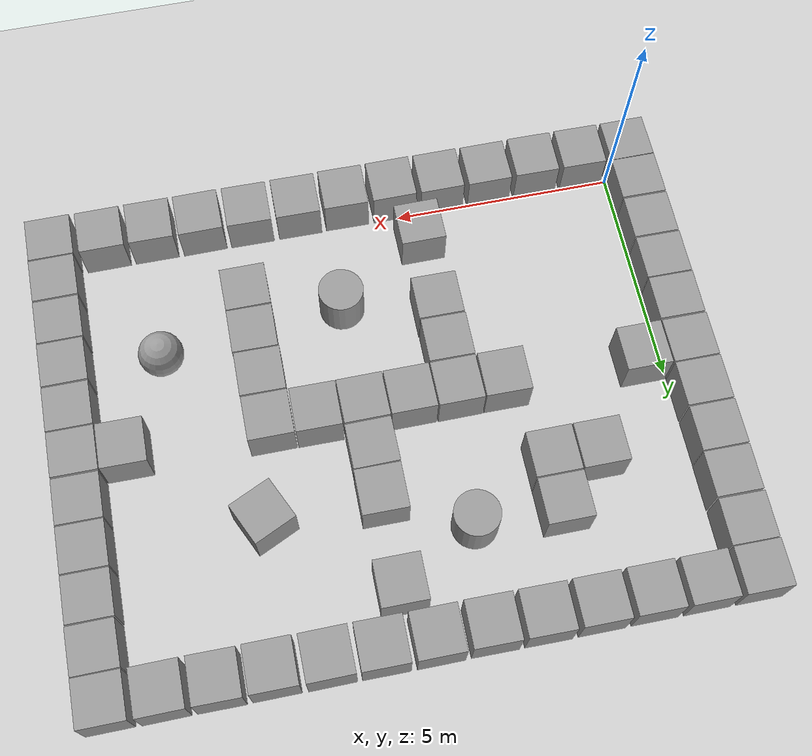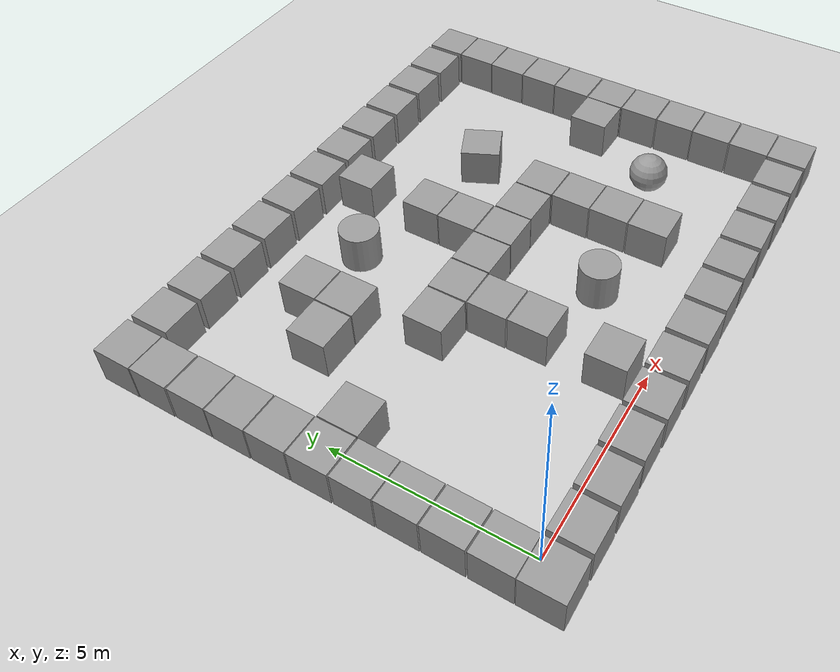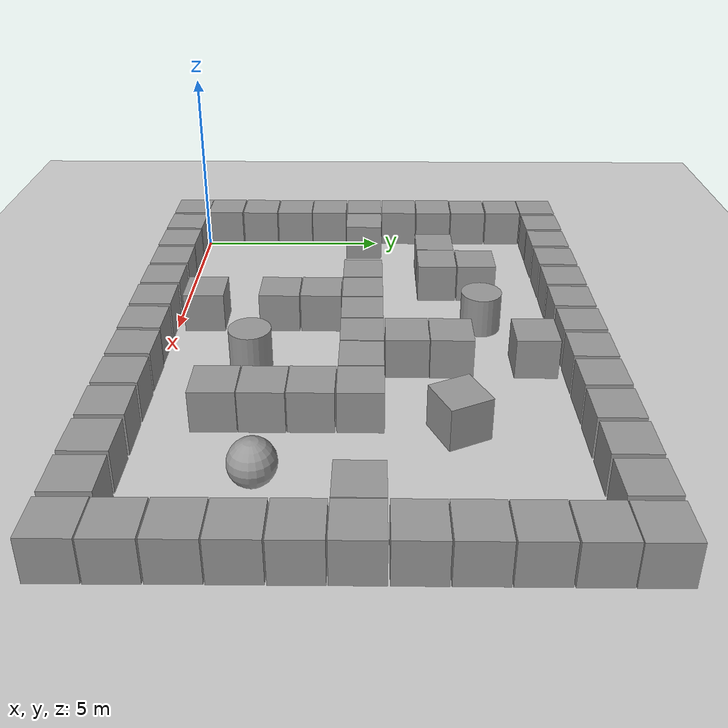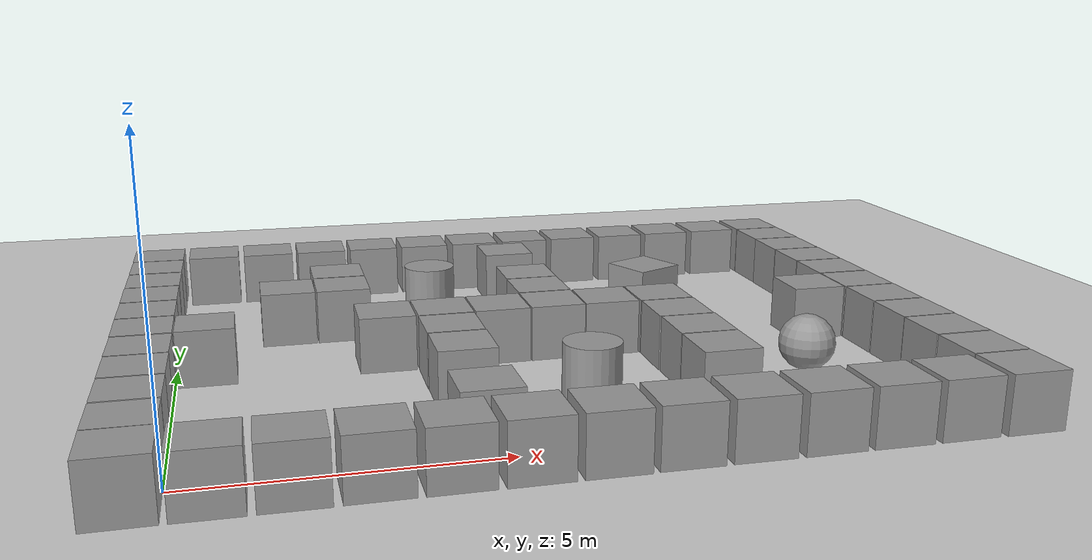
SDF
<?xml version="1.0"?>
<sdf version="1.6">
  <world name="loop_test">
    <include><uri>model://ground_plane</uri></include>
    <include><uri>model://sun</uri></include>
    <physics type="ode"><real_time_update_rate>1000.0</real_time_update_rate><max_step_size>0.001</max_step_size><real_time_factor>1</real_time_factor><ode><solver><type>quick</type><iters>150</iters><precon_iters>0</precon_iters><sor>1.400000</sor><use_dynamic_moi_rescaling>1</use_dynamic_moi_rescaling></solver><constraints><cfm>0.00001</cfm><erp>0.2</erp><contact_max_correcting_vel>2000.000000</contact_max_correcting_vel><contact_surface_layer>0.01000</contact_surface_layer></constraints></ode></physics>
    <scene><shadows>false</shadows></scene>
    <gui fullscreen="0"><camera name="user_camera"><pose>6.2 -5.5 13 0 0.95 1.5707</pose><view_controller>orbit</view_controller><projection_type>perspective</projection_type></camera></gui>
    <model name='unit_box_0'>
      <pose>-0.5011 -0.4995 0.5 0 0 0.00758</pose>
      <link name='link'><inertial><mass>1</mass><inertia><ixx>0.166667</ixx><ixy>0</ixy><ixz>0</ixz><iyy>0.166667</iyy><iyz>0</iyz><izz>0.166667</izz></inertia></inertial>
        <collision name='collision'><geometry><box><size>1 1 1</size></box></geometry><max_contacts>10</max_contacts></collision>
        <visual name='visual'><geometry><box><size>1 1 1</size></box></geometry><material><script><uri>file://media/materials/scripts/gazebo.material</uri><name>Gazebo/Grey</name></script></material></visual>
      </link>
    </model>
    <model name='unit_box_1'>
      <pose>0.6120 -0.5033 0.5 0 0 -0.00986</pose>
      <link name='link'><inertial><mass>1</mass><inertia><ixx>0.166667</ixx><ixy>0</ixy><ixz>0</ixz><iyy>0.166667</iyy><iyz>0</iyz><izz>0.166667</izz></inertia></inertial>
        <collision name='collision'><geometry><box><size>1 1 1</size></box></geometry><max_contacts>10</max_contacts></collision>
        <visual name='visual'><geometry><box><size>1 1 1</size></box></geometry><material><script><uri>file://media/materials/scripts/gazebo.material</uri><name>Gazebo/Grey</name></script></material></visual>
      </link>
    </model>
    <model name='unit_box_2'>
      <pose>1.7271 -0.5059 0.5 0 0 -0.00719</pose>
      <link name='link'><inertial><mass>1</mass><inertia><ixx>0.166667</ixx><ixy>0</ixy><ixz>0</ixz><iyy>0.166667</iyy><iyz>0</iyz><izz>0.166667</izz></inertia></inertial>
        <collision name='collision'><geometry><box><size>1 1 1</size></box></geometry><max_contacts>10</max_contacts></collision>
        <visual name='visual'><geometry><box><size>1 1 1</size></box></geometry><material><script><uri>file://media/materials/scripts/gazebo.material</uri><name>Gazebo/Grey</name></script></material></visual>
      </link>
    </model>
    <model name='unit_box_3'>
      <pose>2.8477 -0.4941 0.5 0 0 0.00405</pose>
      <link name='link'><inertial><mass>1</mass><inertia><ixx>0.166667</ixx><ixy>0</ixy><ixz>0</ixz><iyy>0.166667</iyy><iyz>0</iyz><izz>0.166667</izz></inertia></inertial>
        <collision name='collision'><geometry><box><size>1 1 1</size></box></geometry><max_contacts>10</max_contacts></collision>
        <visual name='visual'><geometry><box><size>1 1 1</size></box></geometry><material><script><uri>file://media/materials/scripts/gazebo.material</uri><name>Gazebo/Grey</name></script></material></visual>
      </link>
    </model>
    <model name='unit_box_4'>
      <pose>3.9619 -0.5011 0.5 0 0 0.00401</pose>
      <link name='link'><inertial><mass>1</mass><inertia><ixx>0.166667</ixx><ixy>0</ixy><ixz>0</ixz><iyy>0.166667</iyy><iyz>0</iyz><izz>0.166667</izz></inertia></inertial>
        <collision name='collision'><geometry><box><size>1 1 1</size></box></geometry><max_contacts>10</max_contacts></collision>
        <visual name='visual'><geometry><box><size>1 1 1</size></box></geometry><material><script><uri>file://media/materials/scripts/gazebo.material</uri><name>Gazebo/Grey</name></script></material></visual>
      </link>
    </model>
    <model name='unit_box_5'>
      <pose>5.0771 -0.5051 0.5 0 0 0.00715</pose>
      <link name='link'><inertial><mass>1</mass><inertia><ixx>0.166667</ixx><ixy>0</ixy><ixz>0</ixz><iyy>0.166667</iyy><iyz>0</iyz><izz>0.166667</izz></inertia></inertial>
        <collision name='collision'><geometry><box><size>1 1 1</size></box></geometry><max_contacts>10</max_contacts></collision>
        <visual name='visual'><geometry><box><size>1 1 1</size></box></geometry><material><script><uri>file://media/materials/scripts/gazebo.material</uri><name>Gazebo/Grey</name></script></material></visual>
      </link>
    </model>
    <model name='unit_box_6'>
      <pose>6.1964 -0.5047 0.5 0 0 -0.00900</pose>
      <link name='link'><inertial><mass>1</mass><inertia><ixx>0.166667</ixx><ixy>0</ixy><ixz>0</ixz><iyy>0.166667</iyy><iyz>0</iyz><izz>0.166667</izz></inertia></inertial>
        <collision name='collision'><geometry><box><size>1 1 1</size></box></geometry><max_contacts>10</max_contacts></collision>
        <visual name='visual'><geometry><box><size>1 1 1</size></box></geometry><material><script><uri>file://media/materials/scripts/gazebo.material</uri><name>Gazebo/Grey</name></script></material></visual>
      </link>
    </model>
    <model name='unit_box_7'>
      <pose>7.3060 -0.4945 0.5 0 0 -0.00822</pose>
      <link name='link'><inertial><mass>1</mass><inertia><ixx>0.166667</ixx><ixy>0</ixy><ixz>0</ixz><iyy>0.166667</iyy><iyz>0</iyz><izz>0.166667</izz></inertia></inertial>
        <collision name='collision'><geometry><box><size>1 1 1</size></box></geometry><max_contacts>10</max_contacts></collision>
        <visual name='visual'><geometry><box><size>1 1 1</size></box></geometry><material><script><uri>file://media/materials/scripts/gazebo.material</uri><name>Gazebo/Grey</name></script></material></visual>
      </link>
    </model>
    <model name='unit_box_8'>
      <pose>8.4282 -0.4944 0.5 0 0 -0.00974</pose>
      <link name='link'><inertial><mass>1</mass><inertia><ixx>0.166667</ixx><ixy>0</ixy><ixz>0</ixz><iyy>0.166667</iyy><iyz>0</iyz><izz>0.166667</izz></inertia></inertial>
        <collision name='collision'><geometry><box><size>1 1 1</size></box></geometry><max_contacts>10</max_contacts></collision>
        <visual name='visual'><geometry><box><size>1 1 1</size></box></geometry><material><script><uri>file://media/materials/scripts/gazebo.material</uri><name>Gazebo/Grey</name></script></material></visual>
      </link>
    </model>
    <model name='unit_box_9'>
      <pose>9.5411 -0.5003 0.5 0 0 0.00873</pose>
      <link name='link'><inertial><mass>1</mass><inertia><ixx>0.166667</ixx><ixy>0</ixy><ixz>0</ixz><iyy>0.166667</iyy><iyz>0</iyz><izz>0.166667</izz></inertia></inertial>
        <collision name='collision'><geometry><box><size>1 1 1</size></box></geometry><max_contacts>10</max_contacts></collision>
        <visual name='visual'><geometry><box><size>1 1 1</size></box></geometry><material><script><uri>file://media/materials/scripts/gazebo.material</uri><name>Gazebo/Grey</name></script></material></visual>
      </link>
    </model>
    <model name='unit_box_10'>
      <pose>10.6546 -0.5029 0.5 0 0 -0.00528</pose>
      <link name='link'><inertial><mass>1</mass><inertia><ixx>0.166667</ixx><ixy>0</ixy><ixz>0</ixz><iyy>0.166667</iyy><iyz>0</iyz><izz>0.166667</izz></inertia></inertial>
        <collision name='collision'><geometry><box><size>1 1 1</size></box></geometry><max_contacts>10</max_contacts></collision>
        <visual name='visual'><geometry><box><size>1 1 1</size></box></geometry><material><script><uri>file://media/materials/scripts/gazebo.material</uri><name>Gazebo/Grey</name></script></material></visual>
      </link>
    </model>
    <model name='unit_box_11'>
      <pose>11.7688 -0.4979 0.5 0 0 0.00663</pose>
      <link name='link'><inertial><mass>1</mass><inertia><ixx>0.166667</ixx><ixy>0</ixy><ixz>0</ixz><iyy>0.166667</iyy><iyz>0</iyz><izz>0.166667</izz></inertia></inertial>
        <collision name='collision'><geometry><box><size>1 1 1</size></box></geometry><max_contacts>10</max_contacts></collision>
        <visual name='visual'><geometry><box><size>1 1 1</size></box></geometry><material><script><uri>file://media/materials/scripts/gazebo.material</uri><name>Gazebo/Grey</name></script></material></visual>
      </link>
    </model>
    <model name='unit_box_12'>
      <pose>12.8892 -0.5055 0.5 0 0 0.00447</pose>
      <link name='link'><inertial><mass>1</mass><inertia><ixx>0.166667</ixx><ixy>0</ixy><ixz>0</ixz><iyy>0.166667</iyy><iyz>0</iyz><izz>0.166667</izz></inertia></inertial>
        <collision name='collision'><geometry><box><size>1 1 1</size></box></geometry><max_contacts>10</max_contacts></collision>
        <visual name='visual'><geometry><box><size>1 1 1</size></box></geometry><material><script><uri>file://media/materials/scripts/gazebo.material</uri><name>Gazebo/Grey</name></script></material></visual>
      </link>
    </model>
    <model name='unit_box_13'>
      <pose>-0.4972 9.8018 0.5 0 0 -0.00359</pose>
      <link name='link'><inertial><mass>1</mass><inertia><ixx>0.166667</ixx><ixy>0</ixy><ixz>0</ixz><iyy>0.166667</iyy><iyz>0</iyz><izz>0.166667</izz></inertia></inertial>
        <collision name='collision'><geometry><box><size>1 1 1</size></box></geometry><max_contacts>10</max_contacts></collision>
        <visual name='visual'><geometry><box><size>1 1 1</size></box></geometry><material><script><uri>file://media/materials/scripts/gazebo.material</uri><name>Gazebo/Grey</name></script></material></visual>
      </link>
    </model>
    <model name='unit_box_14'>
      <pose>0.6198 9.8016 0.5 0 0 0.00188</pose>
      <link name='link'><inertial><mass>1</mass><inertia><ixx>0.166667</ixx><ixy>0</ixy><ixz>0</ixz><iyy>0.166667</iyy><iyz>0</iyz><izz>0.166667</izz></inertia></inertial>
        <collision name='collision'><geometry><box><size>1 1 1</size></box></geometry><max_contacts>10</max_contacts></collision>
        <visual name='visual'><geometry><box><size>1 1 1</size></box></geometry><material><script><uri>file://media/materials/scripts/gazebo.material</uri><name>Gazebo/Grey</name></script></material></visual>
      </link>
    </model>
    <model name='unit_box_15'>
      <pose>1.7322 9.7968 0.5 0 0 -0.00093</pose>
      <link name='link'><inertial><mass>1</mass><inertia><ixx>0.166667</ixx><ixy>0</ixy><ixz>0</ixz><iyy>0.166667</iyy><iyz>0</iyz><izz>0.166667</izz></inertia></inertial>
        <collision name='collision'><geometry><box><size>1 1 1</size></box></geometry><max_contacts>10</max_contacts></collision>
        <visual name='visual'><geometry><box><size>1 1 1</size></box></geometry><material><script><uri>file://media/materials/scripts/gazebo.material</uri><name>Gazebo/Grey</name></script></material></visual>
      </link>
    </model>
    <model name='unit_box_16'>
      <pose>2.8510 9.8022 0.5 0 0 -0.00323</pose>
      <link name='link'><inertial><mass>1</mass><inertia><ixx>0.166667</ixx><ixy>0</ixy><ixz>0</ixz><iyy>0.166667</iyy><iyz>0</iyz><izz>0.166667</izz></inertia></inertial>
        <collision name='collision'><geometry><box><size>1 1 1</size></box></geometry><max_contacts>10</max_contacts></collision>
        <visual name='visual'><geometry><box><size>1 1 1</size></box></geometry><material><script><uri>file://media/materials/scripts/gazebo.material</uri><name>Gazebo/Grey</name></script></material></visual>
      </link>
    </model>
    <model name='unit_box_17'>
      <pose>3.9672 9.8041 0.5 0 0 -0.00956</pose>
      <link name='link'><inertial><mass>1</mass><inertia><ixx>0.166667</ixx><ixy>0</ixy><ixz>0</ixz><iyy>0.166667</iyy><iyz>0</iyz><izz>0.166667</izz></inertia></inertial>
        <collision name='collision'><geometry><box><size>1 1 1</size></box></geometry><max_contacts>10</max_contacts></collision>
        <visual name='visual'><geometry><box><size>1 1 1</size></box></geometry><material><script><uri>file://media/materials/scripts/gazebo.material</uri><name>Gazebo/Grey</name></script></material></visual>
      </link>
    </model>
    <model name='unit_box_18'>
      <pose>5.0751 9.7967 0.5 0 0 -0.01017</pose>
      <link name='link'><inertial><mass>1</mass><inertia><ixx>0.166667</ixx><ixy>0</ixy><ixz>0</ixz><iyy>0.166667</iyy><iyz>0</iyz><izz>0.166667</izz></inertia></inertial>
        <collision name='collision'><geometry><box><size>1 1 1</size></box></geometry><max_contacts>10</max_contacts></collision>
        <visual name='visual'><geometry><box><size>1 1 1</size></box></geometry><material><script><uri>file://media/materials/scripts/gazebo.material</uri><name>Gazebo/Grey</name></script></material></visual>
      </link>
    </model>
    <model name='unit_box_19'>
      <pose>6.1980 9.8018 0.5 0 0 0.00090</pose>
      <link name='link'><inertial><mass>1</mass><inertia><ixx>0.166667</ixx><ixy>0</ixy><ixz>0</ixz><iyy>0.166667</iyy><iyz>0</iyz><izz>0.166667</izz></inertia></inertial>
        <collision name='collision'><geometry><box><size>1 1 1</size></box></geometry><max_contacts>10</max_contacts></collision>
        <visual name='visual'><geometry><box><size>1 1 1</size></box></geometry><material><script><uri>file://media/materials/scripts/gazebo.material</uri><name>Gazebo/Grey</name></script></material></visual>
      </link>
    </model>
    <model name='unit_box_20'>
      <pose>7.3168 9.7983 0.5 0 0 -0.00630</pose>
      <link name='link'><inertial><mass>1</mass><inertia><ixx>0.166667</ixx><ixy>0</ixy><ixz>0</ixz><iyy>0.166667</iyy><iyz>0</iyz><izz>0.166667</izz></inertia></inertial>
        <collision name='collision'><geometry><box><size>1 1 1</size></box></geometry><max_contacts>10</max_contacts></collision>
        <visual name='visual'><geometry><box><size>1 1 1</size></box></geometry><material><script><uri>file://media/materials/scripts/gazebo.material</uri><name>Gazebo/Grey</name></script></material></visual>
      </link>
    </model>
    <model name='unit_box_21'>
      <pose>8.4220 9.7981 0.5 0 0 0.00708</pose>
      <link name='link'><inertial><mass>1</mass><inertia><ixx>0.166667</ixx><ixy>0</ixy><ixz>0</ixz><iyy>0.166667</iyy><iyz>0</iyz><izz>0.166667</izz></inertia></inertial>
        <collision name='collision'><geometry><box><size>1 1 1</size></box></geometry><max_contacts>10</max_contacts></collision>
        <visual name='visual'><geometry><box><size>1 1 1</size></box></geometry><material><script><uri>file://media/materials/scripts/gazebo.material</uri><name>Gazebo/Grey</name></script></material></visual>
      </link>
    </model>
    <model name='unit_box_22'>
      <pose>9.5438 9.7947 0.5 0 0 -0.00140</pose>
      <link name='link'><inertial><mass>1</mass><inertia><ixx>0.166667</ixx><ixy>0</ixy><ixz>0</ixz><iyy>0.166667</iyy><iyz>0</iyz><izz>0.166667</izz></inertia></inertial>
        <collision name='collision'><geometry><box><size>1 1 1</size></box></geometry><max_contacts>10</max_contacts></collision>
        <visual name='visual'><geometry><box><size>1 1 1</size></box></geometry><material><script><uri>file://media/materials/scripts/gazebo.material</uri><name>Gazebo/Grey</name></script></material></visual>
      </link>
    </model>
    <model name='unit_box_23'>
      <pose>10.6529 9.8015 0.5 0 0 -0.00791</pose>
      <link name='link'><inertial><mass>1</mass><inertia><ixx>0.166667</ixx><ixy>0</ixy><ixz>0</ixz><iyy>0.166667</iyy><iyz>0</iyz><izz>0.166667</izz></inertia></inertial>
        <collision name='collision'><geometry><box><size>1 1 1</size></box></geometry><max_contacts>10</max_contacts></collision>
        <visual name='visual'><geometry><box><size>1 1 1</size></box></geometry><material><script><uri>file://media/materials/scripts/gazebo.material</uri><name>Gazebo/Grey</name></script></material></visual>
      </link>
    </model>
    <model name='unit_box_24'>
      <pose>11.7703 9.8017 0.5 0 0 0.00703</pose>
      <link name='link'><inertial><mass>1</mass><inertia><ixx>0.166667</ixx><ixy>0</ixy><ixz>0</ixz><iyy>0.166667</iyy><iyz>0</iyz><izz>0.166667</izz></inertia></inertial>
        <collision name='collision'><geometry><box><size>1 1 1</size></box></geometry><max_contacts>10</max_contacts></collision>
        <visual name='visual'><geometry><box><size>1 1 1</size></box></geometry><material><script><uri>file://media/materials/scripts/gazebo.material</uri><name>Gazebo/Grey</name></script></material></visual>
      </link>
    </model>
    <model name='unit_box_25'>
      <pose>12.8914 9.7975 0.5 0 0 0.00304</pose>
      <link name='link'><inertial><mass>1</mass><inertia><ixx>0.166667</ixx><ixy>0</ixy><ixz>0</ixz><iyy>0.166667</iyy><iyz>0</iyz><izz>0.166667</izz></inertia></inertial>
        <collision name='collision'><geometry><box><size>1 1 1</size></box></geometry><max_contacts>10</max_contacts></collision>
        <visual name='visual'><geometry><box><size>1 1 1</size></box></geometry><material><script><uri>file://media/materials/scripts/gazebo.material</uri><name>Gazebo/Grey</name></script></material></visual>
      </link>
    </model>
    <model name='unit_box_26'>
      <pose>-0.5027 0.5141 0.5 0 0 -0.00474</pose>
      <link name='link'><inertial><mass>1</mass><inertia><ixx>0.166667</ixx><ixy>0</ixy><ixz>0</ixz><iyy>0.166667</iyy><iyz>0</iyz><izz>0.166667</izz></inertia></inertial>
        <collision name='collision'><geometry><box><size>1 1 1</size></box></geometry><max_contacts>10</max_contacts></collision>
        <visual name='visual'><geometry><box><size>1 1 1</size></box></geometry><material><script><uri>file://media/materials/scripts/gazebo.material</uri><name>Gazebo/Grey</name></script></material></visual>
      </link>
    </model>
    <model name='unit_box_27'>
      <pose>-0.4977 1.5540 0.5 0 0 -0.00644</pose>
      <link name='link'><inertial><mass>1</mass><inertia><ixx>0.166667</ixx><ixy>0</ixy><ixz>0</ixz><iyy>0.166667</iyy><iyz>0</iyz><izz>0.166667</izz></inertia></inertial>
        <collision name='collision'><geometry><box><size>1 1 1</size></box></geometry><max_contacts>10</max_contacts></collision>
        <visual name='visual'><geometry><box><size>1 1 1</size></box></geometry><material><script><uri>file://media/materials/scripts/gazebo.material</uri><name>Gazebo/Grey</name></script></material></visual>
      </link>
    </model>
    <model name='unit_box_28'>
      <pose>-0.4959 2.5890 0.5 0 0 -0.00462</pose>
      <link name='link'><inertial><mass>1</mass><inertia><ixx>0.166667</ixx><ixy>0</ixy><ixz>0</ixz><iyy>0.166667</iyy><iyz>0</iyz><izz>0.166667</izz></inertia></inertial>
        <collision name='collision'><geometry><box><size>1 1 1</size></box></geometry><max_contacts>10</max_contacts></collision>
        <visual name='visual'><geometry><box><size>1 1 1</size></box></geometry><material><script><uri>file://media/materials/scripts/gazebo.material</uri><name>Gazebo/Grey</name></script></material></visual>
      </link>
    </model>
    <model name='unit_box_29'>
      <pose>-0.4945 3.6147 0.5 0 0 -0.00911</pose>
      <link name='link'><inertial><mass>1</mass><inertia><ixx>0.166667</ixx><ixy>0</ixy><ixz>0</ixz><iyy>0.166667</iyy><iyz>0</iyz><izz>0.166667</izz></inertia></inertial>
        <collision name='collision'><geometry><box><size>1 1 1</size></box></geometry><max_contacts>10</max_contacts></collision>
        <visual name='visual'><geometry><box><size>1 1 1</size></box></geometry><material><script><uri>file://media/materials/scripts/gazebo.material</uri><name>Gazebo/Grey</name></script></material></visual>
      </link>
    </model>
    <model name='unit_box_30'>
      <pose>-0.4999 4.6544 0.5 0 0 0.00209</pose>
      <link name='link'><inertial><mass>1</mass><inertia><ixx>0.166667</ixx><ixy>0</ixy><ixz>0</ixz><iyy>0.166667</iyy><iyz>0</iyz><izz>0.166667</izz></inertia></inertial>
        <collision name='collision'><geometry><box><size>1 1 1</size></box></geometry><max_contacts>10</max_contacts></collision>
        <visual name='visual'><geometry><box><size>1 1 1</size></box></geometry><material><script><uri>file://media/materials/scripts/gazebo.material</uri><name>Gazebo/Grey</name></script></material></visual>
      </link>
    </model>
    <model name='unit_box_31'>
      <pose>-0.4994 5.6824 0.5 0 0 -0.00452</pose>
      <link name='link'><inertial><mass>1</mass><inertia><ixx>0.166667</ixx><ixy>0</ixy><ixz>0</ixz><iyy>0.166667</iyy><iyz>0</iyz><izz>0.166667</izz></inertia></inertial>
        <collision name='collision'><geometry><box><size>1 1 1</size></box></geometry><max_contacts>10</max_contacts></collision>
        <visual name='visual'><geometry><box><size>1 1 1</size></box></geometry><material><script><uri>file://media/materials/scripts/gazebo.material</uri><name>Gazebo/Grey</name></script></material></visual>
      </link>
    </model>
    <model name='unit_box_32'>
      <pose>-0.5024 6.7138 0.5 0 0 0.00099</pose>
      <link name='link'><inertial><mass>1</mass><inertia><ixx>0.166667</ixx><ixy>0</ixy><ixz>0</ixz><iyy>0.166667</iyy><iyz>0</iyz><izz>0.166667</izz></inertia></inertial>
        <collision name='collision'><geometry><box><size>1 1 1</size></box></geometry><max_contacts>10</max_contacts></collision>
        <visual name='visual'><geometry><box><size>1 1 1</size></box></geometry><material><script><uri>file://media/materials/scripts/gazebo.material</uri><name>Gazebo/Grey</name></script></material></visual>
      </link>
    </model>
    <model name='unit_box_33'>
      <pose>-0.4947 7.7424 0.5 0 0 -0.00519</pose>
      <link name='link'><inertial><mass>1</mass><inertia><ixx>0.166667</ixx><ixy>0</ixy><ixz>0</ixz><iyy>0.166667</iyy><iyz>0</iyz><izz>0.166667</izz></inertia></inertial>
        <collision name='collision'><geometry><box><size>1 1 1</size></box></geometry><max_contacts>10</max_contacts></collision>
        <visual name='visual'><geometry><box><size>1 1 1</size></box></geometry><material><script><uri>file://media/materials/scripts/gazebo.material</uri><name>Gazebo/Grey</name></script></material></visual>
      </link>
    </model>
    <model name='unit_box_34'>
      <pose>-0.4947 8.7819 0.5 0 0 -0.00891</pose>
      <link name='link'><inertial><mass>1</mass><inertia><ixx>0.166667</ixx><ixy>0</ixy><ixz>0</ixz><iyy>0.166667</iyy><iyz>0</iyz><izz>0.166667</izz></inertia></inertial>
        <collision name='collision'><geometry><box><size>1 1 1</size></box></geometry><max_contacts>10</max_contacts></collision>
        <visual name='visual'><geometry><box><size>1 1 1</size></box></geometry><material><script><uri>file://media/materials/scripts/gazebo.material</uri><name>Gazebo/Grey</name></script></material></visual>
      </link>
    </model>
    <model name='unit_box_35'>
      <pose>12.8893 0.5218 0.5 0 0 0.00863</pose>
      <link name='link'><inertial><mass>1</mass><inertia><ixx>0.166667</ixx><ixy>0</ixy><ixz>0</ixz><iyy>0.166667</iyy><iyz>0</iyz><izz>0.166667</izz></inertia></inertial>
        <collision name='collision'><geometry><box><size>1 1 1</size></box></geometry><max_contacts>10</max_contacts></collision>
        <visual name='visual'><geometry><box><size>1 1 1</size></box></geometry><material><script><uri>file://media/materials/scripts/gazebo.material</uri><name>Gazebo/Grey</name></script></material></visual>
      </link>
    </model>
    <model name='unit_box_36'>
      <pose>12.8850 1.5573 0.5 0 0 0.00567</pose>
      <link name='link'><inertial><mass>1</mass><inertia><ixx>0.166667</ixx><ixy>0</ixy><ixz>0</ixz><iyy>0.166667</iyy><iyz>0</iyz><izz>0.166667</izz></inertia></inertial>
        <collision name='collision'><geometry><box><size>1 1 1</size></box></geometry><max_contacts>10</max_contacts></collision>
        <visual name='visual'><geometry><box><size>1 1 1</size></box></geometry><material><script><uri>file://media/materials/scripts/gazebo.material</uri><name>Gazebo/Grey</name></script></material></visual>
      </link>
    </model>
    <model name='unit_box_37'>
      <pose>12.8873 2.5854 0.5 0 0 0.00682</pose>
      <link name='link'><inertial><mass>1</mass><inertia><ixx>0.166667</ixx><ixy>0</ixy><ixz>0</ixz><iyy>0.166667</iyy><iyz>0</iyz><izz>0.166667</izz></inertia></inertial>
        <collision name='collision'><geometry><box><size>1 1 1</size></box></geometry><max_contacts>10</max_contacts></collision>
        <visual name='visual'><geometry><box><size>1 1 1</size></box></geometry><material><script><uri>file://media/materials/scripts/gazebo.material</uri><name>Gazebo/Grey</name></script></material></visual>
      </link>
    </model>
    <model name='unit_box_38'>
      <pose>12.8869 3.6199 0.5 0 0 0.00126</pose>
      <link name='link'><inertial><mass>1</mass><inertia><ixx>0.166667</ixx><ixy>0</ixy><ixz>0</ixz><iyy>0.166667</iyy><iyz>0</iyz><izz>0.166667</izz></inertia></inertial>
        <collision name='collision'><geometry><box><size>1 1 1</size></box></geometry><max_contacts>10</max_contacts></collision>
        <visual name='visual'><geometry><box><size>1 1 1</size></box></geometry><material><script><uri>file://media/materials/scripts/gazebo.material</uri><name>Gazebo/Grey</name></script></material></visual>
      </link>
    </model>
    <model name='unit_box_39'>
      <pose>12.8849 4.6473 0.5 0 0 -0.00183</pose>
      <link name='link'><inertial><mass>1</mass><inertia><ixx>0.166667</ixx><ixy>0</ixy><ixz>0</ixz><iyy>0.166667</iyy><iyz>0</iyz><izz>0.166667</izz></inertia></inertial>
        <collision name='collision'><geometry><box><size>1 1 1</size></box></geometry><max_contacts>10</max_contacts></collision>
        <visual name='visual'><geometry><box><size>1 1 1</size></box></geometry><material><script><uri>file://media/materials/scripts/gazebo.material</uri><name>Gazebo/Grey</name></script></material></visual>
      </link>
    </model>
    <model name='unit_box_40'>
      <pose>12.8857 5.6878 0.5 0 0 -0.00523</pose>
      <link name='link'><inertial><mass>1</mass><inertia><ixx>0.166667</ixx><ixy>0</ixy><ixz>0</ixz><iyy>0.166667</iyy><iyz>0</iyz><izz>0.166667</izz></inertia></inertial>
        <collision name='collision'><geometry><box><size>1 1 1</size></box></geometry><max_contacts>10</max_contacts></collision>
        <visual name='visual'><geometry><box><size>1 1 1</size></box></geometry><material><script><uri>file://media/materials/scripts/gazebo.material</uri><name>Gazebo/Grey</name></script></material></visual>
      </link>
    </model>
    <model name='unit_box_41'>
      <pose>12.8868 6.7162 0.5 0 0 0.00058</pose>
      <link name='link'><inertial><mass>1</mass><inertia><ixx>0.166667</ixx><ixy>0</ixy><ixz>0</ixz><iyy>0.166667</iyy><iyz>0</iyz><izz>0.166667</izz></inertia></inertial>
        <collision name='collision'><geometry><box><size>1 1 1</size></box></geometry><max_contacts>10</max_contacts></collision>
        <visual name='visual'><geometry><box><size>1 1 1</size></box></geometry><material><script><uri>file://media/materials/scripts/gazebo.material</uri><name>Gazebo/Grey</name></script></material></visual>
      </link>
    </model>
    <model name='unit_box_42'>
      <pose>12.8878 7.7454 0.5 0 0 -0.00007</pose>
      <link name='link'><inertial><mass>1</mass><inertia><ixx>0.166667</ixx><ixy>0</ixy><ixz>0</ixz><iyy>0.166667</iyy><iyz>0</iyz><izz>0.166667</izz></inertia></inertial>
        <collision name='collision'><geometry><box><size>1 1 1</size></box></geometry><max_contacts>10</max_contacts></collision>
        <visual name='visual'><geometry><box><size>1 1 1</size></box></geometry><material><script><uri>file://media/materials/scripts/gazebo.material</uri><name>Gazebo/Grey</name></script></material></visual>
      </link>
    </model>
    <model name='unit_box_43'>
      <pose>12.8949 8.7749 0.5 0 0 0.00863</pose>
      <link name='link'><inertial><mass>1</mass><inertia><ixx>0.166667</ixx><ixy>0</ixy><ixz>0</ixz><iyy>0.166667</iyy><iyz>0</iyz><izz>0.166667</izz></inertia></inertial>
        <collision name='collision'><geometry><box><size>1 1 1</size></box></geometry><max_contacts>10</max_contacts></collision>
        <visual name='visual'><geometry><box><size>1 1 1</size></box></geometry><material><script><uri>file://media/materials/scripts/gazebo.material</uri><name>Gazebo/Grey</name></script></material></visual>
      </link>
    </model>
    <model name='unit_box_44'>
      <pose>4.6553 0.7122 0.5 0 0 0.00634</pose>
      <link name='link'><inertial><mass>1</mass><inertia><ixx>0.166667</ixx><ixy>0</ixy><ixz>0</ixz><iyy>0.166667</iyy><iyz>0</iyz><izz>0.166667</izz></inertia></inertial>
        <collision name='collision'><geometry><box><size>1 1 1</size></box></geometry><max_contacts>10</max_contacts></collision>
        <visual name='visual'><geometry><box><size>1 1 1</size></box></geometry><material><script><uri>file://media/materials/scripts/gazebo.material</uri><name>Gazebo/Grey</name></script></material></visual>
      </link>
    </model>
    <model name='unit_box_45'>
      <pose>8.7686 1.5656 0.5 0 0 0.00508</pose>
      <link name='link'><inertial><mass>1</mass><inertia><ixx>0.166667</ixx><ixy>0</ixy><ixz>0</ixz><iyy>0.166667</iyy><iyz>0</iyz><izz>0.166667</izz></inertia></inertial>
        <collision name='collision'><geometry><box><size>1 1 1</size></box></geometry><max_contacts>10</max_contacts></collision>
        <visual name='visual'><geometry><box><size>1 1 1</size></box></geometry><material><script><uri>file://media/materials/scripts/gazebo.material</uri><name>Gazebo/Grey</name></script></material></visual>
      </link>
    </model>
    <model name='unit_box_46'>
      <pose>4.6522 2.5894 0.5 0 0 -0.00585</pose>
      <link name='link'><inertial><mass>1</mass><inertia><ixx>0.166667</ixx><ixy>0</ixy><ixz>0</ixz><iyy>0.166667</iyy><iyz>0</iyz><izz>0.166667</izz></inertia></inertial>
        <collision name='collision'><geometry><box><size>1 1 1</size></box></geometry><max_contacts>10</max_contacts></collision>
        <visual name='visual'><geometry><box><size>1 1 1</size></box></geometry><material><script><uri>file://media/materials/scripts/gazebo.material</uri><name>Gazebo/Grey</name></script></material></visual>
      </link>
    </model>
    <model name='unit_box_47'>
      <pose>8.7723 2.5928 0.5 0 0 -0.01037</pose>
      <link name='link'><inertial><mass>1</mass><inertia><ixx>0.166667</ixx><ixy>0</ixy><ixz>0</ixz><iyy>0.166667</iyy><iyz>0</iyz><izz>0.166667</izz></inertia></inertial>
        <collision name='collision'><geometry><box><size>1 1 1</size></box></geometry><max_contacts>10</max_contacts></collision>
        <visual name='visual'><geometry><box><size>1 1 1</size></box></geometry><material><script><uri>file://media/materials/scripts/gazebo.material</uri><name>Gazebo/Grey</name></script></material></visual>
      </link>
    </model>
    <model name='unit_box_48'>
      <pose>4.6477 3.6204 0.5 0 0 -0.00603</pose>
      <link name='link'><inertial><mass>1</mass><inertia><ixx>0.166667</ixx><ixy>0</ixy><ixz>0</ixz><iyy>0.166667</iyy><iyz>0</iyz><izz>0.166667</izz></inertia></inertial>
        <collision name='collision'><geometry><box><size>1 1 1</size></box></geometry><max_contacts>10</max_contacts></collision>
        <visual name='visual'><geometry><box><size>1 1 1</size></box></geometry><material><script><uri>file://media/materials/scripts/gazebo.material</uri><name>Gazebo/Grey</name></script></material></visual>
      </link>
    </model>
    <model name='unit_box_49'>
      <pose>8.7656 3.6163 0.5 0 0 -0.01014</pose>
      <link name='link'><inertial><mass>1</mass><inertia><ixx>0.166667</ixx><ixy>0</ixy><ixz>0</ixz><iyy>0.166667</iyy><iyz>0</iyz><izz>0.166667</izz></inertia></inertial>
        <collision name='collision'><geometry><box><size>1 1 1</size></box></geometry><max_contacts>10</max_contacts></collision>
        <visual name='visual'><geometry><box><size>1 1 1</size></box></geometry><material><script><uri>file://media/materials/scripts/gazebo.material</uri><name>Gazebo/Grey</name></script></material></visual>
      </link>
    </model>
    <model name='unit_box_50'>
      <pose>0.5254 4.6487 0.5 0 0 0.00003</pose>
      <link name='link'><inertial><mass>1</mass><inertia><ixx>0.166667</ixx><ixy>0</ixy><ixz>0</ixz><iyy>0.166667</iyy><iyz>0</iyz><izz>0.166667</izz></inertia></inertial>
        <collision name='collision'><geometry><box><size>1 1 1</size></box></geometry><max_contacts>10</max_contacts></collision>
        <visual name='visual'><geometry><box><size>1 1 1</size></box></geometry><material><script><uri>file://media/materials/scripts/gazebo.material</uri><name>Gazebo/Grey</name></script></material></visual>
      </link>
    </model>
    <model name='unit_box_51'>
      <pose>3.6217 4.6477 0.5 0 0 -0.00779</pose>
      <link name='link'><inertial><mass>1</mass><inertia><ixx>0.166667</ixx><ixy>0</ixy><ixz>0</ixz><iyy>0.166667</iyy><iyz>0</iyz><izz>0.166667</izz></inertia></inertial>
        <collision name='collision'><geometry><box><size>1 1 1</size></box></geometry><max_contacts>10</max_contacts></collision>
        <visual name='visual'><geometry><box><size>1 1 1</size></box></geometry><material><script><uri>file://media/materials/scripts/gazebo.material</uri><name>Gazebo/Grey</name></script></material></visual>
      </link>
    </model>
    <model name='unit_box_52'>
      <pose>4.6550 4.6516 0.5 0 0 0.00375</pose>
      <link name='link'><inertial><mass>1</mass><inertia><ixx>0.166667</ixx><ixy>0</ixy><ixz>0</ixz><iyy>0.166667</iyy><iyz>0</iyz><izz>0.166667</izz></inertia></inertial>
        <collision name='collision'><geometry><box><size>1 1 1</size></box></geometry><max_contacts>10</max_contacts></collision>
        <visual name='visual'><geometry><box><size>1 1 1</size></box></geometry><material><script><uri>file://media/materials/scripts/gazebo.material</uri><name>Gazebo/Grey</name></script></material></visual>
      </link>
    </model>
    <model name='unit_box_53'>
      <pose>5.6823 4.6479 0.5 0 0 0.00196</pose>
      <link name='link'><inertial><mass>1</mass><inertia><ixx>0.166667</ixx><ixy>0</ixy><ixz>0</ixz><iyy>0.166667</iyy><iyz>0</iyz><izz>0.166667</izz></inertia></inertial>
        <collision name='collision'><geometry><box><size>1 1 1</size></box></geometry><max_contacts>10</max_contacts></collision>
        <visual name='visual'><geometry><box><size>1 1 1</size></box></geometry><material><script><uri>file://media/materials/scripts/gazebo.material</uri><name>Gazebo/Grey</name></script></material></visual>
      </link>
    </model>
    <model name='unit_box_54'>
      <pose>6.7078 4.6518 0.5 0 0 0.00666</pose>
      <link name='link'><inertial><mass>1</mass><inertia><ixx>0.166667</ixx><ixy>0</ixy><ixz>0</ixz><iyy>0.166667</iyy><iyz>0</iyz><izz>0.166667</izz></inertia></inertial>
        <collision name='collision'><geometry><box><size>1 1 1</size></box></geometry><max_contacts>10</max_contacts></collision>
        <visual name='visual'><geometry><box><size>1 1 1</size></box></geometry><material><script><uri>file://media/materials/scripts/gazebo.material</uri><name>Gazebo/Grey</name></script></material></visual>
      </link>
    </model>
    <model name='unit_box_55'>
      <pose>7.7342 4.6535 0.5 0 0 -0.00802</pose>
      <link name='link'><inertial><mass>1</mass><inertia><ixx>0.166667</ixx><ixy>0</ixy><ixz>0</ixz><iyy>0.166667</iyy><iyz>0</iyz><izz>0.166667</izz></inertia></inertial>
        <collision name='collision'><geometry><box><size>1 1 1</size></box></geometry><max_contacts>10</max_contacts></collision>
        <visual name='visual'><geometry><box><size>1 1 1</size></box></geometry><material><script><uri>file://media/materials/scripts/gazebo.material</uri><name>Gazebo/Grey</name></script></material></visual>
      </link>
    </model>
    <model name='unit_box_56'>
      <pose>8.7642 4.6449 0.5 0 0 0.00131</pose>
      <link name='link'><inertial><mass>1</mass><inertia><ixx>0.166667</ixx><ixy>0</ixy><ixz>0</ixz><iyy>0.166667</iyy><iyz>0</iyz><izz>0.166667</izz></inertia></inertial>
        <collision name='collision'><geometry><box><size>1 1 1</size></box></geometry><max_contacts>10</max_contacts></collision>
        <visual name='visual'><geometry><box><size>1 1 1</size></box></geometry><material><script><uri>file://media/materials/scripts/gazebo.material</uri><name>Gazebo/Grey</name></script></material></visual>
      </link>
    </model>
    <model name='unit_box_57'>
      <pose>11.8643 4.6551 0.5 0 0 -0.00717</pose>
      <link name='link'><inertial><mass>1</mass><inertia><ixx>0.166667</ixx><ixy>0</ixy><ixz>0</ixz><iyy>0.166667</iyy><iyz>0</iyz><izz>0.166667</izz></inertia></inertial>
        <collision name='collision'><geometry><box><size>1 1 1</size></box></geometry><max_contacts>10</max_contacts></collision>
        <visual name='visual'><geometry><box><size>1 1 1</size></box></geometry><material><script><uri>file://media/materials/scripts/gazebo.material</uri><name>Gazebo/Grey</name></script></material></visual>
      </link>
    </model>
    <model name='unit_box_58'>
      <pose>6.7091 5.6853 0.5 0 0 0.00812</pose>
      <link name='link'><inertial><mass>1</mass><inertia><ixx>0.166667</ixx><ixy>0</ixy><ixz>0</ixz><iyy>0.166667</iyy><iyz>0</iyz><izz>0.166667</izz></inertia></inertial>
        <collision name='collision'><geometry><box><size>1 1 1</size></box></geometry><max_contacts>10</max_contacts></collision>
        <visual name='visual'><geometry><box><size>1 1 1</size></box></geometry><material><script><uri>file://media/materials/scripts/gazebo.material</uri><name>Gazebo/Grey</name></script></material></visual>
      </link>
    </model>
    <model name='unit_box_59'>
      <pose>6.7139 6.7070 0.5 0 0 -0.00472</pose>
      <link name='link'><inertial><mass>1</mass><inertia><ixx>0.166667</ixx><ixy>0</ixy><ixz>0</ixz><iyy>0.166667</iyy><iyz>0</iyz><izz>0.166667</izz></inertia></inertial>
        <collision name='collision'><geometry><box><size>1 1 1</size></box></geometry><max_contacts>10</max_contacts></collision>
        <visual name='visual'><geometry><box><size>1 1 1</size></box></geometry><material><script><uri>file://media/materials/scripts/gazebo.material</uri><name>Gazebo/Grey</name></script></material></visual>
      </link>
    </model>
    <model name='unit_box_60'>
      <pose>6.7058 8.6472 0.5 0 0 -0.00200</pose>
      <link name='link'><inertial><mass>1</mass><inertia><ixx>0.166667</ixx><ixy>0</ixy><ixz>0</ixz><iyy>0.166667</iyy><iyz>0</iyz><izz>0.166667</izz></inertia></inertial>
        <collision name='collision'><geometry><box><size>1 1 1</size></box></geometry><max_contacts>10</max_contacts></collision>
        <visual name='visual'><geometry><box><size>1 1 1</size></box></geometry><material><script><uri>file://media/materials/scripts/gazebo.material</uri><name>Gazebo/Grey</name></script></material></visual>
      </link>
    </model>
    <model name='unit_box_61'>
      <pose>9.2000 6.7000 0.5 0 0 0.43633</pose>
      <link name='link'><inertial><mass>1</mass><inertia><ixx>0.166667</ixx><ixy>0</ixy><ixz>0</ixz><iyy>0.166667</iyy><iyz>0</iyz><izz>0.166667</izz></inertia></inertial>
        <collision name='collision'><geometry><box><size>1 1 1</size></box></geometry><max_contacts>10</max_contacts></collision>
        <visual name='visual'><geometry><box><size>1 1 1</size></box></geometry><material><script><uri>file://media/materials/scripts/gazebo.material</uri><name>Gazebo/Grey</name></script></material></visual>
      </link>
    </model>
    <model name='unit_box_62'>
      <pose>2.0000 6.6000 0.5 0 0 0.00000</pose>
      <link name='link'><inertial><mass>1</mass><inertia><ixx>0.166667</ixx><ixy>0</ixy><ixz>0</ixz><iyy>0.166667</iyy><iyz>0</iyz><izz>0.166667</izz></inertia></inertial>
        <collision name='collision'><geometry><box><size>1 1 1</size></box></geometry><max_contacts>10</max_contacts></collision>
        <visual name='visual'><geometry><box><size>1 1 1</size></box></geometry><material><script><uri>file://media/materials/scripts/gazebo.material</uri><name>Gazebo/Grey</name></script></material></visual>
      </link>
    </model>
    <model name='unit_box_63'>
      <pose>3.0300 6.6000 0.5 0 0 0.00000</pose>
      <link name='link'><inertial><mass>1</mass><inertia><ixx>0.166667</ixx><ixy>0</ixy><ixz>0</ixz><iyy>0.166667</iyy><iyz>0</iyz><izz>0.166667</izz></inertia></inertial>
        <collision name='collision'><geometry><box><size>1 1 1</size></box></geometry><max_contacts>10</max_contacts></collision>
        <visual name='visual'><geometry><box><size>1 1 1</size></box></geometry><material><script><uri>file://media/materials/scripts/gazebo.material</uri><name>Gazebo/Grey</name></script></material></visual>
      </link>
    </model>
    <model name='unit_box_64'>
      <pose>3.0300 7.6300 0.5 0 0 0.00000</pose>
      <link name='link'><inertial><mass>1</mass><inertia><ixx>0.166667</ixx><ixy>0</ixy><ixz>0</ixz><iyy>0.166667</iyy><iyz>0</iyz><izz>0.166667</izz></inertia></inertial>
        <collision name='collision'><geometry><box><size>1 1 1</size></box></geometry><max_contacts>10</max_contacts></collision>
        <visual name='visual'><geometry><box><size>1 1 1</size></box></geometry><material><script><uri>file://media/materials/scripts/gazebo.material</uri><name>Gazebo/Grey</name></script></material></visual>
      </link>
    </model>
    <model name='unit_sphere_0'>
      <pose>10.8300 2.5900 0.5 0 0 0.00000</pose>
      <link name='link'><inertial><mass>1</mass><inertia><ixx>0.166667</ixx><ixy>0</ixy><ixz>0</ixz><iyy>0.166667</iyy><iyz>0</iyz><izz>0.166667</izz></inertia></inertial>
        <collision name='collision'><geometry><sphere><radius>0.5</radius></sphere></geometry><max_contacts>10</max_contacts></collision>
        <visual name='visual'><geometry><sphere><radius>0.5</radius></sphere></geometry><material><script><uri>file://media/materials/scripts/gazebo.material</uri><name>Gazebo/Grey</name></script></material></visual>
      </link>
    </model>
    <model name='unit_cylinder_0'>
      <pose>6.7100 2.0600 0.5 0 0 0.00000</pose>
      <link name='link'><inertial><mass>1</mass><inertia><ixx>0.166667</ixx><ixy>0</ixy><ixz>0</ixz><iyy>0.166667</iyy><iyz>0</iyz><izz>0.166667</izz></inertia></inertial>
        <collision name='collision'><geometry><cylinder><radius>0.5</radius><length>1</length></cylinder></geometry><max_contacts>10</max_contacts></collision>
        <visual name='visual'><geometry><cylinder><radius>0.5</radius><length>1</length></cylinder></geometry><material><script><uri>file://media/materials/scripts/gazebo.material</uri><name>Gazebo/Grey</name></script></material></visual>
      </link>
    </model>
    <model name='unit_cylinder_1'>
      <pose>4.9000 7.6000 0.5 0 0 0.00000</pose>
      <link name='link'><inertial><mass>1</mass><inertia><ixx>0.166667</ixx><ixy>0</ixy><ixz>0</ixz><iyy>0.166667</iyy><iyz>0</iyz><izz>0.166667</izz></inertia></inertial>
        <collision name='collision'><geometry><cylinder><radius>0.5</radius><length>1</length></cylinder></geometry><max_contacts>10</max_contacts></collision>
        <visual name='visual'><geometry><cylinder><radius>0.5</radius><length>1</length></cylinder></geometry><material><script><uri>file://media/materials/scripts/gazebo.material</uri><name>Gazebo/Grey</name></script></material></visual>
      </link>
    </model>
  </world>
</sdf>
